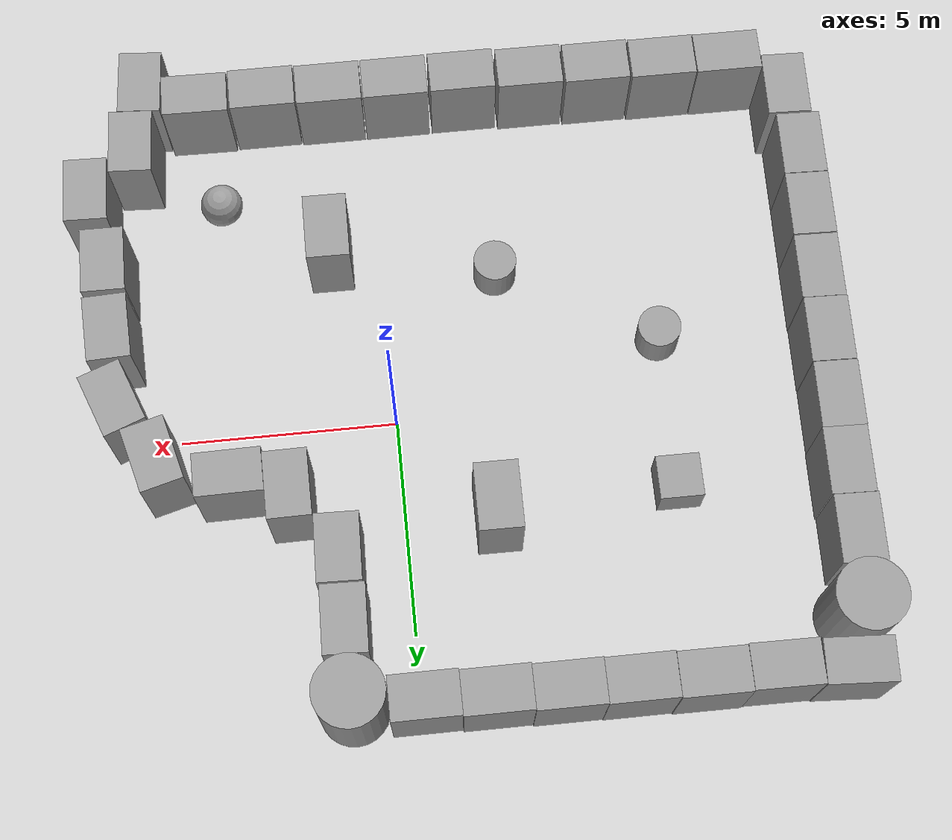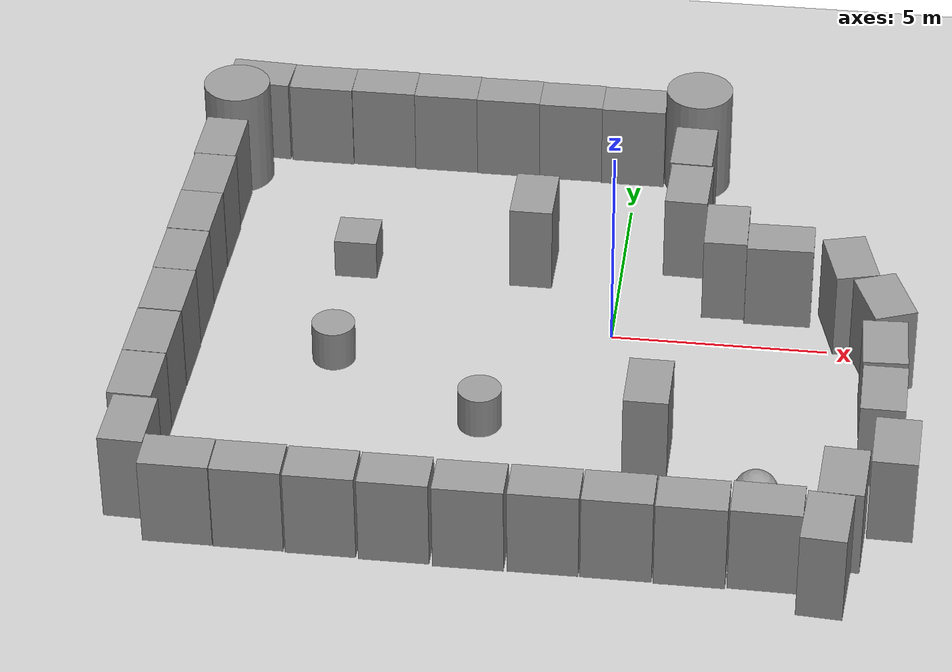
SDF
<sdf version="1.7">
 <world name="default">
  <light name="sun" type="directional">
   <pose>0 0 10 0 -0 0</pose>
   <diffuse>0.8 0.8 0.8 1</diffuse>
   <specular>0.2 0.2 0.2 1</specular>
   <attenuation>
    <range>1000</range>
    <constant>0.9</constant>
    <linear>0.01</linear>
    <quadratic>0.001</quadratic>
   </attenuation>
   <direction>-0.5 0.1 -0.9</direction>
   <spot><inner_angle>0</inner_angle><outer_angle>0</outer_angle><falloff>0</falloff></spot>
  </light>
  <model name="ground_plane">
   <static>1</static>
   <link name="link">
    <collision name="collision">
     <geometry><plane><normal>0 0 1</normal><size>100 100</size></plane></geometry>
     <surface><friction><ode><mu>100</mu><mu2>50</mu2></ode></friction></surface>
    </collision>
    <visual name="visual">
     <cast_shadows>0</cast_shadows>
     <geometry><plane><normal>0 0 1</normal><size>100 100</size></plane></geometry>
     <material>
      <script><uri>file://media/materials/scripts/gazebo.material</uri><name>Gazebo/Grey</name></script>
     </material>
    </visual>
   </link>
  </model>
  <gravity>0 0 -9.8</gravity>
  <magnetic_field>6e-06 2.3e-05 -4.2e-05</magnetic_field>
  <atmosphere type="adiabatic"/>
  <physics type="ode">
   <max_step_size>0.001</max_step_size>
   <real_time_factor>1</real_time_factor>
   <real_time_update_rate>1000</real_time_update_rate>
  </physics>
  <scene><ambient>0.4 0.4 0.4 1</ambient><background>0.7 0.7 0.7 1</background><shadows>1</shadows></scene>
  <audio><device>default</device></audio>
  <spherical_coordinates>
   <surface_model>EARTH_WGS84</surface_model>
   <latitude_deg>0</latitude_deg>
   <longitude_deg>0</longitude_deg>
   <elevation>0</elevation>
   <heading_deg>0</heading_deg>
  </spherical_coordinates>
  <model name="unit_cylinder_3">
   <static>true</static>
   <pose>1.47233 6.53026 1.34171 0 -0 0.262692</pose>
   <link name="link">
    <inertial>
     <mass>1</mass>
     <inertia><ixx>0.145833</ixx><ixy>0</ixy><ixz>0</ixz><iyy>0.145833</iyy><iyz>0</iyz><izz>0.125</izz></inertia>
    </inertial>
    <collision name="collision">
     <geometry><cylinder><radius>0.798515</radius><length>2.68343</length></cylinder></geometry>
    </collision>
    <visual name="visual">
     <geometry><cylinder><radius>0.798515</radius><length>2.68343</length></cylinder></geometry>
     <material>
      <script><name>Gazebo/Grey</name><uri>file://media/materials/scripts/gazebo.material</uri></script>
     </material>
    </visual>
   </link>
  </model>
  <model name="unit_box">
   <static>true</static>
   <pose>-0.097113 6.69338 1.08187 0 -0 0.003286</pose>
   <link name="link">
    <inertial>
     <mass>1</mass>
     <inertia>
      <ixx>0.166667</ixx>
      <ixy>0</ixy>
      <ixz>0</ixz>
      <iyy>0.166667</iyy>
      <iyz>0</iyz>
      <izz>0.166667</izz>
     </inertia>
    </inertial>
    <collision name="collision"><geometry><box><size>1.53966 1 2.16375</size></box></geometry></collision>
    <visual name="visual">
     <geometry><box><size>1.53966 1 2.16375</size></box></geometry>
     <material>
      <script><name>Gazebo/Grey</name><uri>file://media/materials/scripts/gazebo.material</uri></script>
     </material>
    </visual>
   </link>
  </model>
  <model name="unit_box_clone">
   <static>true</static>
   <pose>-1.63698 6.72245 1.08187 0 -0 0.003071</pose>
   <link name="link">
    <inertial>
     <mass>1</mass>
     <inertia>
      <ixx>0.166667</ixx>
      <ixy>0</ixy>
      <ixz>0</ixz>
      <iyy>0.166667</iyy>
      <iyz>0</iyz>
      <izz>0.166667</izz>
     </inertia>
    </inertial>
    <collision name="collision"><geometry><box><size>1.53966 1 2.16375</size></box></geometry></collision>
    <visual name="visual">
     <geometry><box><size>1.53966 1 2.16375</size></box></geometry>
     <material>
      <script><name>Gazebo/Grey</name><uri>file://media/materials/scripts/gazebo.material</uri></script>
     </material>
    </visual>
   </link>
  </model>
  <model name="unit_box_clone_0">
   <static>true</static>
   <pose>-3.17681 6.74878 1.08187 0 -0 0.003126</pose>
   <link name="link">
    <inertial>
     <mass>1</mass>
     <inertia>
      <ixx>0.166667</ixx>
      <ixy>0</ixy>
      <ixz>0</ixz>
      <iyy>0.166667</iyy>
      <iyz>0</iyz>
      <izz>0.166667</izz>
     </inertia>
    </inertial>
    <collision name="collision"><geometry><box><size>1.53966 1 2.16375</size></box></geometry></collision>
    <visual name="visual">
     <geometry><box><size>1.53966 1 2.16375</size></box></geometry>
     <material>
      <script><name>Gazebo/Grey</name><uri>file://media/materials/scripts/gazebo.material</uri></script>
     </material>
    </visual>
   </link>
  </model>
  <model name="unit_box_clone_1">
   <static>true</static>
   <pose>-4.71668 6.76093 1.08187 0 -0 0.003227</pose>
   <link name="link">
    <inertial>
     <mass>1</mass>
     <inertia>
      <ixx>0.166667</ixx>
      <ixy>0</ixy>
      <ixz>0</ixz>
      <iyy>0.166667</iyy>
      <iyz>0</iyz>
      <izz>0.166667</izz>
     </inertia>
    </inertial>
    <collision name="collision"><geometry><box><size>1.53966 1 2.16375</size></box></geometry></collision>
    <visual name="visual">
     <geometry><box><size>1.53966 1 2.16375</size></box></geometry>
     <material>
      <script><name>Gazebo/Grey</name><uri>file://media/materials/scripts/gazebo.material</uri></script>
     </material>
    </visual>
   </link>
  </model>
  <model name="unit_box_clone_2">
   <static>true</static>
   <pose>-6.25856 6.78479 1.08187 -0 -0 -0.001021</pose>
   <link name="link">
    <inertial>
     <mass>1</mass>
     <inertia>
      <ixx>0.166667</ixx>
      <ixy>0</ixy>
      <ixz>0</ixz>
      <iyy>0.166667</iyy>
      <iyz>0</iyz>
      <izz>0.166667</izz>
     </inertia>
    </inertial>
    <collision name="collision"><geometry><box><size>1.53966 1 2.16375</size></box></geometry></collision>
    <visual name="visual">
     <geometry><box><size>1.53966 1 2.16375</size></box></geometry>
     <material>
      <script><name>Gazebo/Grey</name><uri>file://media/materials/scripts/gazebo.material</uri></script>
     </material>
    </visual>
   </link>
  </model>
  <model name="unit_box_clone_3">
   <static>true</static>
   <pose>-7.80109 6.77001 1.08187 0 -5e-06 -0.006408</pose>
   <link name="link">
    <inertial>
     <mass>1</mass>
     <inertia>
      <ixx>0.166667</ixx>
      <ixy>0</ixy>
      <ixz>0</ixz>
      <iyy>0.166667</iyy>
      <iyz>0</iyz>
      <izz>0.166667</izz>
     </inertia>
    </inertial>
    <collision name="collision"><geometry><box><size>1.53966 1 2.16375</size></box></geometry></collision>
    <visual name="visual">
     <geometry><box><size>1.53966 1 2.16375</size></box></geometry>
     <material>
      <script><name>Gazebo/Grey</name><uri>file://media/materials/scripts/gazebo.material</uri></script>
     </material>
    </visual>
   </link>
  </model>
  <model name="unit_box_clone_4">
   <static>true</static>
   <pose>-9.36101 6.83544 1.08187 -0 -0 -0.049643</pose>
   <link name="link">
    <inertial>
     <mass>1</mass>
     <inertia>
      <ixx>0.166667</ixx>
      <ixy>0</ixy>
      <ixz>0</ixz>
      <iyy>0.166667</iyy>
      <iyz>0</iyz>
      <izz>0.166667</izz>
     </inertia>
    </inertial>
    <collision name="collision"><geometry><box><size>1.53966 1 2.16375</size></box></geometry></collision>
    <visual name="visual">
     <geometry><box><size>1.53966 1 2.16375</size></box></geometry>
     <material>
      <script><name>Gazebo/Grey</name><uri>file://media/materials/scripts/gazebo.material</uri></script>
     </material>
    </visual>
   </link>
  </model>
  <model name="unit_cylinder_3_clone">
   <static>true</static>
   <pose>-9.72083 5.54736 1.34171 0 -0 0.300571</pose>
   <link name="link">
    <inertial>
     <mass>1</mass>
     <inertia><ixx>0.145833</ixx><ixy>0</ixy><ixz>0</ixz><iyy>0.145833</iyy><iyz>0</iyz><izz>0.125</izz></inertia>
    </inertial>
    <collision name="collision">
     <geometry><cylinder><radius>0.798513</radius><length>2.68343</length></cylinder></geometry>
    </collision>
    <visual name="visual">
     <geometry><cylinder><radius>0.798513</radius><length>2.68343</length></cylinder></geometry>
     <material>
      <script><name>Gazebo/Grey</name><uri>file://media/materials/scripts/gazebo.material</uri></script>
     </material>
    </visual>
   </link>
  </model>
  <model name="unit_box_clone_4_clone">
   <static>true</static>
   <pose>-9.84072 3.98126 1.08187 -0 -5e-06 -1.59363</pose>
   <link name="link">
    <inertial>
     <mass>1</mass>
     <inertia>
      <ixx>0.166667</ixx>
      <ixy>0</ixy>
      <ixz>0</ixz>
      <iyy>0.166667</iyy>
      <iyz>0</iyz>
      <izz>0.166667</izz>
     </inertia>
    </inertial>
    <collision name="collision"><geometry><box><size>1.53966 1 2.16375</size></box></geometry></collision>
    <visual name="visual">
     <geometry><box><size>1.53966 1 2.16375</size></box></geometry>
     <material>
      <script><name>Gazebo/Grey</name><uri>file://media/materials/scripts/gazebo.material</uri></script>
     </material>
    </visual>
   </link>
  </model>
  <model name="unit_box_clone_4_clone_clone">
   <static>true</static>
   <pose>-9.8479 2.43786 1.08187 0 5e-06 -1.59363</pose>
   <link name="link">
    <inertial>
     <mass>1</mass>
     <inertia>
      <ixx>0.166667</ixx>
      <ixy>0</ixy>
      <ixz>0</ixz>
      <iyy>0.166667</iyy>
      <iyz>0</iyz>
      <izz>0.166667</izz>
     </inertia>
    </inertial>
    <collision name="collision"><geometry><box><size>1.53966 1 2.16375</size></box></geometry></collision>
    <visual name="visual">
     <geometry><box><size>1.53966 1 2.16375</size></box></geometry>
     <material>
      <script><name>Gazebo/Grey</name><uri>file://media/materials/scripts/gazebo.material</uri></script>
     </material>
    </visual>
   </link>
  </model>
  <model name="unit_box_clone_4_clone_clone_0">
   <static>true</static>
   <pose>-9.89158 0.898775 1.08187 0 -1e-06 -1.59364</pose>
   <link name="link">
    <inertial>
     <mass>1</mass>
     <inertia>
      <ixx>0.166667</ixx>
      <ixy>0</ixy>
      <ixz>0</ixz>
      <iyy>0.166667</iyy>
      <iyz>0</iyz>
      <izz>0.166667</izz>
     </inertia>
    </inertial>
    <collision name="collision"><geometry><box><size>1.53966 1 2.16375</size></box></geometry></collision>
    <visual name="visual">
     <geometry><box><size>1.53966 1 2.16375</size></box></geometry>
     <material>
      <script><name>Gazebo/Grey</name><uri>file://media/materials/scripts/gazebo.material</uri></script>
     </material>
    </visual>
   </link>
  </model>
  <model name="unit_box_clone_4_clone_clone_1">
   <static>true</static>
   <pose>-9.91795 -0.652198 1.08187 0 -0 -1.59368</pose>
   <link name="link">
    <inertial>
     <mass>1</mass>
     <inertia>
      <ixx>0.166667</ixx>
      <ixy>0</ixy>
      <ixz>0</ixz>
      <iyy>0.166667</iyy>
      <iyz>0</iyz>
      <izz>0.166667</izz>
     </inertia>
    </inertial>
    <collision name="collision"><geometry><box><size>1.53966 1 2.16375</size></box></geometry></collision>
    <visual name="visual">
     <geometry><box><size>1.53966 1 2.16375</size></box></geometry>
     <material>
      <script><name>Gazebo/Grey</name><uri>file://media/materials/scripts/gazebo.material</uri></script>
     </material>
    </visual>
   </link>
  </model>
  <model name="unit_box_clone_4_clone_clone_2">
   <static>true</static>
   <pose>-9.93957 -2.19545 1.08187 0 5e-06 -1.59367</pose>
   <link name="link">
    <inertial>
     <mass>1</mass>
     <inertia>
      <ixx>0.166667</ixx>
      <ixy>0</ixy>
      <ixz>0</ixz>
      <iyy>0.166667</iyy>
      <iyz>0</iyz>
      <izz>0.166667</izz>
     </inertia>
    </inertial>
    <collision name="collision"><geometry><box><size>1.53966 1 2.16375</size></box></geometry></collision>
    <visual name="visual">
     <geometry><box><size>1.53966 1 2.16375</size></box></geometry>
     <material>
      <script><name>Gazebo/Grey</name><uri>file://media/materials/scripts/gazebo.material</uri></script>
     </material>
    </visual>
   </link>
  </model>
  <model name="unit_box_clone_4_clone_clone_3">
   <static>true</static>
   <pose>-9.98137 -3.75678 1.08187 0 1e-06 -1.5937</pose>
   <link name="link">
    <inertial>
     <mass>1</mass>
     <inertia>
      <ixx>0.166667</ixx>
      <ixy>0</ixy>
      <ixz>0</ixz>
      <iyy>0.166667</iyy>
      <iyz>0</iyz>
      <izz>0.166667</izz>
     </inertia>
    </inertial>
    <collision name="collision"><geometry><box><size>1.53966 1 2.16375</size></box></geometry></collision>
    <visual name="visual">
     <geometry><box><size>1.53966 1 2.16375</size></box></geometry>
     <material>
      <script><name>Gazebo/Grey</name><uri>file://media/materials/scripts/gazebo.material</uri></script>
     </material>
    </visual>
   </link>
  </model>
  <model name="unit_box_clone_4_clone_clone_4">
   <static>true</static>
   <pose>-10.017 -5.30611 1.08187 0 -5e-06 -1.59369</pose>
   <link name="link">
    <inertial>
     <mass>1</mass>
     <inertia>
      <ixx>0.166667</ixx>
      <ixy>0</ixy>
      <ixz>0</ixz>
      <iyy>0.166667</iyy>
      <iyz>0</iyz>
      <izz>0.166667</izz>
     </inertia>
    </inertial>
    <collision name="collision"><geometry><box><size>1.53966 1 2.16375</size></box></geometry></collision>
    <visual name="visual">
     <geometry><box><size>1.53966 1 2.16375</size></box></geometry>
     <material>
      <script><name>Gazebo/Grey</name><uri>file://media/materials/scripts/gazebo.material</uri></script>
     </material>
    </visual>
   </link>
  </model>
  <model name="unit_box_clone_4_clone_clone_5">
   <static>true</static>
   <pose>1.47464 4.89195 1.08187 0 -0 -1.59374</pose>
   <link name="link">
    <inertial>
     <mass>1</mass>
     <inertia>
      <ixx>0.166667</ixx>
      <ixy>0</ixy>
      <ixz>0</ixz>
      <iyy>0.166667</iyy>
      <iyz>0</iyz>
      <izz>0.166667</izz>
     </inertia>
    </inertial>
    <collision name="collision"><geometry><box><size>1.53966 1 2.16375</size></box></geometry></collision>
    <visual name="visual">
     <geometry><box><size>1.53966 1 2.16375</size></box></geometry>
     <material>
      <script><name>Gazebo/Grey</name><uri>file://media/materials/scripts/gazebo.material</uri></script>
     </material>
    </visual>
   </link>
  </model>
  <model name="unit_box_clone_4_clone_clone_6">
   <static>true</static>
   <pose>1.49237 3.31909 1.08187 0 5e-06 -1.59373</pose>
   <link name="link">
    <inertial>
     <mass>1</mass>
     <inertia>
      <ixx>0.166667</ixx>
      <ixy>0</ixy>
      <ixz>0</ixz>
      <iyy>0.166667</iyy>
      <iyz>0</iyz>
      <izz>0.166667</izz>
     </inertia>
    </inertial>
    <collision name="collision"><geometry><box><size>1.53966 1 2.16375</size></box></geometry></collision>
    <visual name="visual">
     <geometry><box><size>1.53966 1 2.16375</size></box></geometry>
     <material>
      <script><name>Gazebo/Grey</name><uri>file://media/materials/scripts/gazebo.material</uri></script>
     </material>
    </visual>
   </link>
  </model>
  <model name="unit_box_clone_4_clone_clone_7">
   <static>true</static>
   <pose>2.49831 1.79036 1.08187 0 5e-06 -1.55799</pose>
   <link name="link">
    <inertial>
     <mass>1</mass>
     <inertia>
      <ixx>0.166667</ixx>
      <ixy>0</ixy>
      <ixz>0</ixz>
      <iyy>0.166667</iyy>
      <iyz>0</iyz>
      <izz>0.166667</izz>
     </inertia>
    </inertial>
    <collision name="collision"><geometry><box><size>1.53966 1 2.16375</size></box></geometry></collision>
    <visual name="visual">
     <geometry><box><size>1.53966 1 2.16375</size></box></geometry>
     <material>
      <script><name>Gazebo/Grey</name><uri>file://media/materials/scripts/gazebo.material</uri></script>
     </material>
    </visual>
   </link>
  </model>
  <model name="unit_box_clone_clone">
   <static>true</static>
   <pose>3.77695 1.40749 1.08187 0 -0 0.015132</pose>
   <link name="link">
    <inertial>
     <mass>1</mass>
     <inertia>
      <ixx>0.166667</ixx>
      <ixy>0</ixy>
      <ixz>0</ixz>
      <iyy>0.166667</iyy>
      <iyz>0</iyz>
      <izz>0.166667</izz>
     </inertia>
    </inertial>
    <collision name="collision"><geometry><box><size>1.53966 1 2.16375</size></box></geometry></collision>
    <visual name="visual">
     <geometry><box><size>1.53966 1 2.16375</size></box></geometry>
     <material>
      <script><name>Gazebo/Grey</name><uri>file://media/materials/scripts/gazebo.material</uri></script>
     </material>
    </visual>
   </link>
  </model>
  <model name="unit_box_clone_4_clone_clone_8">
   <static>true</static>
   <pose>5.41024 0.830843 1.08187 0 1e-06 -1.30568</pose>
   <link name="link">
    <inertial>
     <mass>1</mass>
     <inertia>
      <ixx>0.166667</ixx>
      <ixy>0</ixy>
      <ixz>0</ixz>
      <iyy>0.166667</iyy>
      <iyz>0</iyz>
      <izz>0.166667</izz>
     </inertia>
    </inertial>
    <collision name="collision"><geometry><box><size>1.53966 1 2.16375</size></box></geometry></collision>
    <visual name="visual">
     <geometry><box><size>1.53966 1 2.16375</size></box></geometry>
     <material>
      <script><name>Gazebo/Grey</name><uri>file://media/materials/scripts/gazebo.material</uri></script>
     </material>
    </visual>
   </link>
  </model>
  <model name="unit_box_clone_4_clone_clone_9">
   <static>true</static>
   <pose>6.25139 -0.550325 1.08187 0 -5e-06 -1.2021</pose>
   <link name="link">
    <inertial>
     <mass>1</mass>
     <inertia>
      <ixx>0.166667</ixx>
      <ixy>0</ixy>
      <ixz>0</ixz>
      <iyy>0.166667</iyy>
      <iyz>0</iyz>
      <izz>0.166667</izz>
     </inertia>
    </inertial>
    <collision name="collision"><geometry><box><size>1.53966 1 2.16375</size></box></geometry></collision>
    <visual name="visual">
     <geometry><box><size>1.53966 1 2.16375</size></box></geometry>
     <material>
      <script><name>Gazebo/Grey</name><uri>file://media/materials/scripts/gazebo.material</uri></script>
     </material>
    </visual>
   </link>
  </model>
  <model name="unit_box_clone_4_clone_clone_10">
   <static>true</static>
   <pose>6.31503 -2.25608 1.08187 0 5e-06 -1.52684</pose>
   <link name="link">
    <inertial>
     <mass>1</mass>
     <inertia>
      <ixx>0.166667</ixx>
      <ixy>0</ixy>
      <ixz>0</ixz>
      <iyy>0.166667</iyy>
      <iyz>0</iyz>
      <izz>0.166667</izz>
     </inertia>
    </inertial>
    <collision name="collision"><geometry><box><size>1.53966 1 2.16375</size></box></geometry></collision>
    <visual name="visual">
     <geometry><box><size>1.53966 1 2.16375</size></box></geometry>
     <material>
      <script><name>Gazebo/Grey</name><uri>file://media/materials/scripts/gazebo.material</uri></script>
     </material>
    </visual>
   </link>
  </model>
  <model name="unit_box_clone_4_clone_clone_11">
   <static>true</static>
   <pose>1.21017 -4.26262 1.08187 0 5e-06 -1.57527</pose>
   <link name="link">
    <inertial>
     <mass>1</mass>
     <inertia>
      <ixx>0.166667</ixx>
      <ixy>0</ixy>
      <ixz>0</ixz>
      <iyy>0.166667</iyy>
      <iyz>0</iyz>
      <izz>0.166667</izz>
     </inertia>
    </inertial>
    <collision name="collision"><geometry><box><size>1.53966 1 2.16375</size></box></geometry></collision>
    <visual name="visual">
     <geometry><box><size>1.53966 1 2.16375</size></box></geometry>
     <material>
      <script><name>Gazebo/Grey</name><uri>file://media/materials/scripts/gazebo.material</uri></script>
     </material>
    </visual>
   </link>
  </model>
  <model name="unit_box_clone_4_clone_clone_12">
   <static>true</static>
   <pose>5.61734 -6.85363 1.08187 -0 -5e-06 -1.61784</pose>
   <link name="link">
    <inertial>
     <mass>1</mass>
     <inertia>
      <ixx>0.166667</ixx>
      <ixy>0</ixy>
      <ixz>0</ixz>
      <iyy>0.166667</iyy>
      <iyz>0</iyz>
      <izz>0.166667</izz>
     </inertia>
    </inertial>
    <collision name="collision"><geometry><box><size>1.53966 1 2.16375</size></box></geometry></collision>
    <visual name="visual">
     <geometry><box><size>1.53966 1 2.16375</size></box></geometry>
     <material>
      <script><name>Gazebo/Grey</name><uri>file://media/materials/scripts/gazebo.material</uri></script>
     </material>
    </visual>
   </link>
  </model>
  <model name="unit_box_clone_4_clone_clone_13">
   <static>true</static>
   <pose>5.34119 -8.38757 1.08187 0 5e-06 -1.6361</pose>
   <link name="link">
    <inertial>
     <mass>1</mass>
     <inertia>
      <ixx>0.166667</ixx>
      <ixy>0</ixy>
      <ixz>0</ixz>
      <iyy>0.166667</iyy>
      <iyz>0</iyz>
      <izz>0.166667</izz>
     </inertia>
    </inertial>
    <collision name="collision"><geometry><box><size>1.53966 1 2.16375</size></box></geometry></collision>
    <visual name="visual">
     <geometry><box><size>1.53966 1 2.16375</size></box></geometry>
     <material>
      <script><name>Gazebo/Grey</name><uri>file://media/materials/scripts/gazebo.material</uri></script>
     </material>
    </visual>
   </link>
  </model>
  <model name="unit_box_clone_0_clone">
   <static>true</static>
   <pose>4.07092 -7.95439 1.08187 0 5e-06 -0.012489</pose>
   <link name="link">
    <inertial>
     <mass>1</mass>
     <inertia>
      <ixx>0.166667</ixx>
      <ixy>0</ixy>
      <ixz>0</ixz>
      <iyy>0.166667</iyy>
      <iyz>0</iyz>
      <izz>0.166667</izz>
     </inertia>
    </inertial>
    <collision name="collision"><geometry><box><size>1.53966 1 2.16375</size></box></geometry></collision>
    <visual name="visual">
     <geometry><box><size>1.53966 1 2.16375</size></box></geometry>
     <material>
      <script><name>Gazebo/Grey</name><uri>file://media/materials/scripts/gazebo.material</uri></script>
     </material>
    </visual>
   </link>
  </model>
  <model name="unit_box_clone_0_clone_0">
   <static>true</static>
   <pose>2.48754 -7.97658 1.08187 0 5e-06 0.003069</pose>
   <link name="link">
    <inertial>
     <mass>1</mass>
     <inertia>
      <ixx>0.166667</ixx>
      <ixy>0</ixy>
      <ixz>0</ixz>
      <iyy>0.166667</iyy>
      <iyz>0</iyz>
      <izz>0.166667</izz>
     </inertia>
    </inertial>
    <collision name="collision"><geometry><box><size>1.53966 1 2.16375</size></box></geometry></collision>
    <visual name="visual">
     <geometry><box><size>1.53966 1 2.16375</size></box></geometry>
     <material>
      <script><name>Gazebo/Grey</name><uri>file://media/materials/scripts/gazebo.material</uri></script>
     </material>
    </visual>
   </link>
  </model>
  <model name="unit_box_clone_0_clone_1">
   <static>true</static>
   <pose>0.914419 -7.95314 1.08187 0 -0 0.003006</pose>
   <link name="link">
    <inertial>
     <mass>1</mass>
     <inertia>
      <ixx>0.166667</ixx>
      <ixy>0</ixy>
      <ixz>0</ixz>
      <iyy>0.166667</iyy>
      <iyz>0</iyz>
      <izz>0.166667</izz>
     </inertia>
    </inertial>
    <collision name="collision"><geometry><box><size>1.53966 1 2.16375</size></box></geometry></collision>
    <visual name="visual">
     <geometry><box><size>1.53966 1 2.16375</size></box></geometry>
     <material>
      <script><name>Gazebo/Grey</name><uri>file://media/materials/scripts/gazebo.material</uri></script>
     </material>
    </visual>
   </link>
  </model>
  <model name="unit_box_clone_0_clone_2">
   <static>true</static>
   <pose>-0.660682 -7.95491 1.08187 -0 5e-06 0.003042</pose>
   <link name="link">
    <inertial>
     <mass>1</mass>
     <inertia>
      <ixx>0.166667</ixx>
      <ixy>0</ixy>
      <ixz>0</ixz>
      <iyy>0.166667</iyy>
      <iyz>0</iyz>
      <izz>0.166667</izz>
     </inertia>
    </inertial>
    <collision name="collision"><geometry><box><size>1.53966 1 2.16375</size></box></geometry></collision>
    <visual name="visual">
     <geometry><box><size>1.53966 1 2.16375</size></box></geometry>
     <material>
      <script><name>Gazebo/Grey</name><uri>file://media/materials/scripts/gazebo.material</uri></script>
     </material>
    </visual>
   </link>
  </model>
  <model name="unit_box_clone_0_clone_3">
   <static>true</static>
   <pose>-2.26964 -7.96997 1.08187 0 -0 0.003056</pose>
   <link name="link">
    <inertial>
     <mass>1</mass>
     <inertia>
      <ixx>0.166667</ixx>
      <ixy>0</ixy>
      <ixz>0</ixz>
      <iyy>0.166667</iyy>
      <iyz>0</iyz>
      <izz>0.166667</izz>
     </inertia>
    </inertial>
    <collision name="collision"><geometry><box><size>1.53966 1 2.16375</size></box></geometry></collision>
    <visual name="visual">
     <geometry><box><size>1.53966 1 2.16375</size></box></geometry>
     <material>
      <script><name>Gazebo/Grey</name><uri>file://media/materials/scripts/gazebo.material</uri></script>
     </material>
    </visual>
   </link>
  </model>
  <model name="unit_box_clone_0_clone_4">
   <static>true</static>
   <pose>-3.88534 -7.93111 1.08187 0 5e-06 0.003009</pose>
   <link name="link">
    <inertial>
     <mass>1</mass>
     <inertia>
      <ixx>0.166667</ixx>
      <ixy>0</ixy>
      <ixz>0</ixz>
      <iyy>0.166667</iyy>
      <iyz>0</iyz>
      <izz>0.166667</izz>
     </inertia>
    </inertial>
    <collision name="collision"><geometry><box><size>1.53966 1 2.16375</size></box></geometry></collision>
    <visual name="visual">
     <geometry><box><size>1.53966 1 2.16375</size></box></geometry>
     <material>
      <script><name>Gazebo/Grey</name><uri>file://media/materials/scripts/gazebo.material</uri></script>
     </material>
    </visual>
   </link>
  </model>
  <model name="unit_box_clone_0_clone_5">
   <static>true</static>
   <pose>-5.4823 -7.90589 1.08187 0 -0 0.003057</pose>
   <link name="link">
    <inertial>
     <mass>1</mass>
     <inertia>
      <ixx>0.166667</ixx>
      <ixy>0</ixy>
      <ixz>0</ixz>
      <iyy>0.166667</iyy>
      <iyz>0</iyz>
      <izz>0.166667</izz>
     </inertia>
    </inertial>
    <collision name="collision"><geometry><box><size>1.53966 1 2.16375</size></box></geometry></collision>
    <visual name="visual">
     <geometry><box><size>1.53966 1 2.16375</size></box></geometry>
     <material>
      <script><name>Gazebo/Grey</name><uri>file://media/materials/scripts/gazebo.material</uri></script>
     </material>
    </visual>
   </link>
  </model>
  <model name="unit_box_clone_0_clone_6">
   <static>true</static>
   <pose>-7.06756 -7.88302 1.08187 -0 5e-06 0.003042</pose>
   <link name="link">
    <inertial>
     <mass>1</mass>
     <inertia>
      <ixx>0.166667</ixx>
      <ixy>0</ixy>
      <ixz>0</ixz>
      <iyy>0.166667</iyy>
      <iyz>0</iyz>
      <izz>0.166667</izz>
     </inertia>
    </inertial>
    <collision name="collision"><geometry><box><size>1.53966 1 2.16375</size></box></geometry></collision>
    <visual name="visual">
     <geometry><box><size>1.53966 1 2.16375</size></box></geometry>
     <material>
      <script><name>Gazebo/Grey</name><uri>file://media/materials/scripts/gazebo.material</uri></script>
     </material>
    </visual>
   </link>
  </model>
  <model name="unit_box_clone_0_clone_7">
   <static>true</static>
   <pose>-8.6257 -7.87328 1.08187 0 -0 0.002033</pose>
   <link name="link">
    <inertial>
     <mass>1</mass>
     <inertia>
      <ixx>0.166667</ixx>
      <ixy>0</ixy>
      <ixz>0</ixz>
      <iyy>0.166667</iyy>
      <iyz>0</iyz>
      <izz>0.166667</izz>
     </inertia>
    </inertial>
    <collision name="collision"><geometry><box><size>1.53966 1 2.16375</size></box></geometry></collision>
    <visual name="visual">
     <geometry><box><size>1.53966 1 2.16375</size></box></geometry>
     <material>
      <script><name>Gazebo/Grey</name><uri>file://media/materials/scripts/gazebo.material</uri></script>
     </material>
    </visual>
   </link>
  </model>
  <model name="unit_box_clone_4_clone_clone_4_clone">
   <static>true</static>
   <pose>-9.88899 -6.88937 1.08187 0 -0 -1.59615</pose>
   <link name="link">
    <inertial>
     <mass>1</mass>
     <inertia>
      <ixx>0.166667</ixx>
      <ixy>0</ixy>
      <ixz>0</ixz>
      <iyy>0.166667</iyy>
      <iyz>0</iyz>
      <izz>0.166667</izz>
     </inertia>
    </inertial>
    <collision name="collision"><geometry><box><size>1.53966 1 2.16375</size></box></geometry></collision>
    <visual name="visual">
     <geometry><box><size>1.53966 1 2.16375</size></box></geometry>
     <material>
      <script><name>Gazebo/Grey</name><uri>file://media/materials/scripts/gazebo.material</uri></script>
     </material>
    </visual>
   </link>
  </model>
  <model name="unit_box_0">
   <static>true</static>
   <pose>-6.26067 2.13082 0.499995 0 1e-05 0</pose>
   <link name="link">
    <inertial>
     <mass>1</mass>
     <inertia>
      <ixx>0.166667</ixx>
      <ixy>0</ixy>
      <ixz>0</ixz>
      <iyy>0.166667</iyy>
      <iyz>0</iyz>
      <izz>0.166667</izz>
     </inertia>
    </inertial>
    <collision name="collision"><geometry><box><size>1 1 1</size></box></geometry></collision>
    <visual name="visual">
     <geometry><box><size>1 1 1</size></box></geometry>
     <material>
      <script><name>Gazebo/Grey</name><uri>file://media/materials/scripts/gazebo.material</uri></script>
     </material>
    </visual>
   </link>
  </model>
  <model name="unit_sphere">
   <static>true</static>
   <pose>3.7242 -5.77369 0.5 0 -0 0</pose>
   <link name="link">
    <inertial>
     <mass>1</mass>
     <inertia><ixx>0.1</ixx><ixy>0</ixy><ixz>0</ixz><iyy>0.1</iyy><iyz>0</iyz><izz>0.1</izz></inertia>
    </inertial>
    <collision name="collision"><geometry><sphere><radius>0.5</radius></sphere></geometry></collision>
    <visual name="visual">
     <geometry><sphere><radius>0.5</radius></sphere></geometry>
     <material>
      <script><name>Gazebo/Grey</name><uri>file://media/materials/scripts/gazebo.material</uri></script>
     </material>
    </visual>
   </link>
  </model>
  <model name="unit_cylinder">
   <static>true</static>
   <pose>-2.6409 -3.5126 0.499994 -4e-06 -1e-06 0.234821</pose>
   <link name="link">
    <inertial>
     <mass>1</mass>
     <inertia><ixx>0.145833</ixx><ixy>0</ixy><ixz>0</ixz><iyy>0.145833</iyy><iyz>0</iyz><izz>0.125</izz></inertia>
    </inertial>
    <collision name="collision">
     <geometry><cylinder><radius>0.5</radius><length>1</length></cylinder></geometry>
    </collision>
    <visual name="visual">
     <geometry><cylinder><radius>0.5</radius><length>1</length></cylinder></geometry>
     <material>
      <script><name>Gazebo/Grey</name><uri>file://media/materials/scripts/gazebo.material</uri></script>
     </material>
    </visual>
   </link>
  </model>
  <model name="unit_box_clone_4_clone_clone_3_clone">
   <static>true</static>
   <pose>6.35741 -3.91513 1.08187 0 5e-06 -1.57457</pose>
   <link name="link">
    <inertial>
     <mass>1</mass>
     <inertia>
      <ixx>0.166667</ixx>
      <ixy>0</ixy>
      <ixz>0</ixz>
      <iyy>0.166667</iyy>
      <iyz>0</iyz>
      <izz>0.166667</izz>
     </inertia>
    </inertial>
    <collision name="collision"><geometry><box><size>1.53966 1 2.16375</size></box></geometry></collision>
    <visual name="visual">
     <geometry><box><size>1.53966 1 2.16375</size></box></geometry>
     <material>
      <script><name>Gazebo/Grey</name><uri>file://media/materials/scripts/gazebo.material</uri></script>
     </material>
    </visual>
   </link>
  </model>
  <model name="unit_box_clone_4_clone_clone_3_clone_0">
   <static>true</static>
   <pose>6.69608 -5.7126 1.08187 0 5e-06 -1.5937</pose>
   <link name="link">
    <inertial>
     <mass>1</mass>
     <inertia>
      <ixx>0.166667</ixx>
      <ixy>0</ixy>
      <ixz>0</ixz>
      <iyy>0.166667</iyy>
      <iyz>0</iyz>
      <izz>0.166667</izz>
     </inertia>
    </inertial>
    <collision name="collision"><geometry><box><size>1.53966 1 2.16375</size></box></geometry></collision>
    <visual name="visual">
     <geometry><box><size>1.53966 1 2.16375</size></box></geometry>
     <material>
      <script><name>Gazebo/Grey</name><uri>file://media/materials/scripts/gazebo.material</uri></script>
     </material>
    </visual>
   </link>
  </model>
  <model name="unit_cylinder_0">
   <static>true</static>
   <pose>-6.2837 -1.4905 0.504045 0.002186 -0.007826 2.8548</pose>
   <link name="link">
    <inertial>
     <mass>1</mass>
     <inertia><ixx>0.145833</ixx><ixy>0</ixy><ixz>0</ixz><iyy>0.145833</iyy><iyz>0</iyz><izz>0.125</izz></inertia>
    </inertial>
    <collision name="collision">
     <geometry><cylinder><radius>0.5</radius><length>1</length></cylinder></geometry>
    </collision>
    <visual name="visual">
     <geometry><cylinder><radius>0.5</radius><length>1</length></cylinder></geometry>
     <material>
      <script><name>Gazebo/Grey</name><uri>file://media/materials/scripts/gazebo.material</uri></script>
     </material>
    </visual>
   </link>
  </model>
  <model name="unit_box_clone_4_clone_clone_11_clone">
   <static>true</static>
   <pose>-2.0934 2.50174 1.08187 -0 -1e-06 -1.57528</pose>
   <link name="link">
    <inertial>
     <mass>1</mass>
     <inertia>
      <ixx>0.166667</ixx>
      <ixy>0</ixy>
      <ixz>0</ixz>
      <iyy>0.166667</iyy>
      <iyz>0</iyz>
      <izz>0.166667</izz>
     </inertia>
    </inertial>
    <collision name="collision"><geometry><box><size>1.53966 1 2.16375</size></box></geometry></collision>
    <visual name="visual">
     <geometry><box><size>1.53966 1 2.16375</size></box></geometry>
     <material>
      <script><name>Gazebo/Grey</name><uri>file://media/materials/scripts/gazebo.material</uri></script>
     </material>
    </visual>
   </link>
  </model>
 </world>
</sdf>
